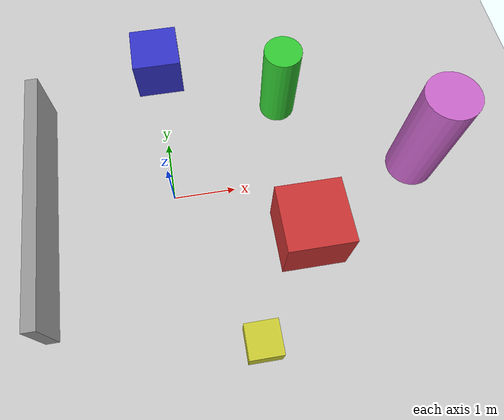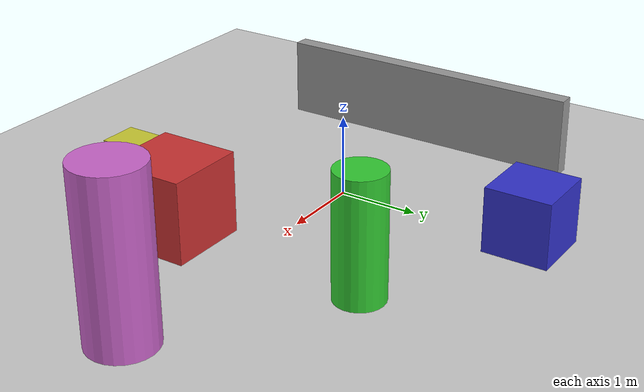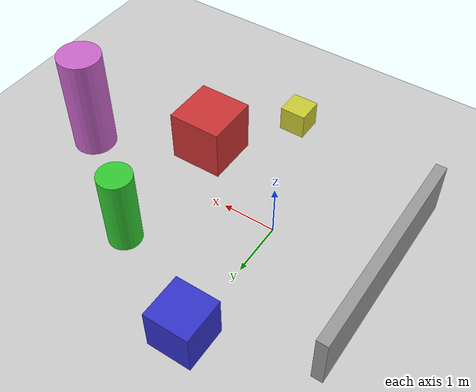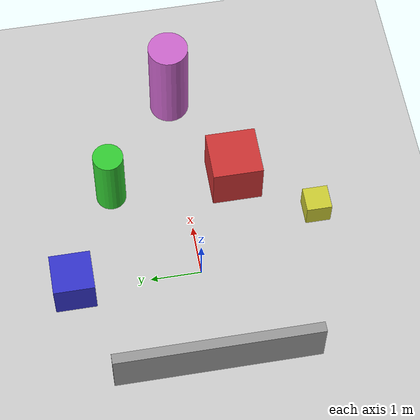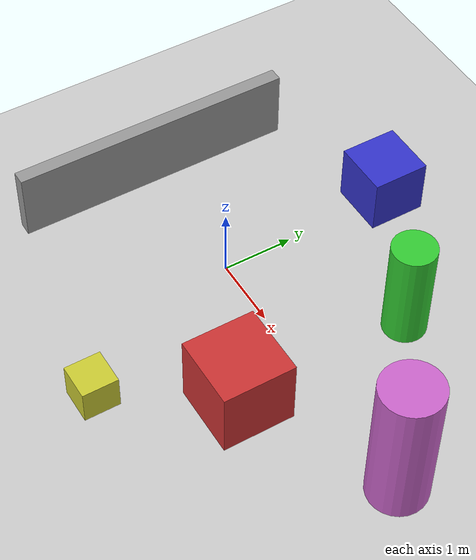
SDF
<?xml version="1.0" ?>
<sdf version="1.6">
  <world name="default">
    <physics name="1ms" type="ignored">
      <max_step_size>0.001</max_step_size>
      <real_time_factor>1.0</real_time_factor>
    </physics>
    <plugin
      filename="libignition-gazebo-physics-system.so"
      name="ignition::gazebo::systems::Physics">
    </plugin>
    <plugin
      filename="libignition-gazebo-user-commands-system.so"
      name="ignition::gazebo::systems::UserCommands">
    </plugin>
    <plugin
      filename="libignition-gazebo-scene-broadcaster-system.so"
      name="ignition::gazebo::systems::SceneBroadcaster">
    </plugin>

    <light type="directional" name="sun">
      <cast_shadows>true</cast_shadows>
      <pose>0 0 10 0 0 0</pose>
      <diffuse>0.8 0.8 0.8 1</diffuse>
      <specular>0.2 0.2 0.2 1</specular>
      <attenuation>
        <range>1000</range>
        <constant>0.9</constant>
        <linear>0.01</linear>
        <quadratic>0.001</quadratic>
      </attenuation>
      <direction>-0.5 0.1 -0.9</direction>
    </light>

    <model name="ground_plane">
      <static>true</static>
      <link name="link">
        <collision name="collision">
          <geometry>
            <plane>
              <normal>0 0 1</normal>
              <size>100 100</size>
            </plane>
          </geometry>
        </collision>
        <visual name="visual">
          <geometry>
            <plane>
              <normal>0 0 1</normal>
              <size>100 100</size>
            </plane>
          </geometry>
          <material>
            <ambient>0.8 0.8 0.8 1</ambient>
            <diffuse>0.8 0.8 0.8 1</diffuse>
            <specular>0.8 0.8 0.8 1</specular>
          </material>
        </visual>
      </link>
    </model>

    <!-- OBSTACLE 1: Box (front-right) -->
    <model name="box_obstacle_1">
      <static>true</static>
      <pose>2 -1 0.5 0 0 0</pose>
      <link name="link">
        <collision name="collision">
          <geometry>
            <box><size>1 1 1</size></box>
          </geometry>
        </collision>
        <visual name="visual">
          <geometry>
            <box><size>1 1 1</size></box>
          </geometry>
          <material>
            <ambient>0.8 0.2 0.2 1</ambient>
            <diffuse>0.8 0.2 0.2 1</diffuse>
          </material>
        </visual>
      </link>
    </model>

    <!-- OBSTACLE 2: Cylinder (front-left) -->
    <model name="cylinder_obstacle">
      <static>true</static>
      <pose>2 1.5 0.75 0 0 0</pose>
      <link name="link">
        <collision name="collision">
          <geometry>
            <cylinder><radius>0.3</radius><length>1.5</length></cylinder>
          </geometry>
        </collision>
        <visual name="visual">
          <geometry>
            <cylinder><radius>0.3</radius><length>1.5</length></cylinder>
          </geometry>
          <material>
            <ambient>0.2 0.8 0.2 1</ambient>
            <diffuse>0.2 0.8 0.2 1</diffuse>
          </material>
        </visual>
      </link>
    </model>

    <!-- OBSTACLE 3: Box (left side) -->
    <model name="box_obstacle_2">
      <static>true</static>
      <pose>0 2.5 0.4 0 0 0</pose>
      <link name="link">
        <collision name="collision">
          <geometry>
            <box><size>0.8 0.8 0.8</size></box>
          </geometry>
        </collision>
        <visual name="visual">
          <geometry>
            <box><size>0.8 0.8 0.8</size></box>
          </geometry>
          <material>
            <ambient>0.2 0.2 0.8 1</ambient>
            <diffuse>0.2 0.2 0.8 1</diffuse>
          </material>
        </visual>
      </link>
    </model>

    <!-- OBSTACLE 4: Wall (behind) -->
    <model name="wall_obstacle">
      <static>true</static>
      <pose>-2 0 0.5 0 0 0</pose>
      <link name="link">
        <collision name="collision">
          <geometry>
            <box><size>0.2 4 1</size></box>
          </geometry>
        </collision>
        <visual name="visual">
          <geometry>
            <box><size>0.2 4 1</size></box>
          </geometry>
          <material>
            <ambient>0.6 0.6 0.6 1</ambient>
            <diffuse>0.6 0.6 0.6 1</diffuse>
          </material>
        </visual>
      </link>
    </model>

    <!-- OBSTACLE 5: Small box (right side) -->
    <model name="box_obstacle_3">
      <static>true</static>
      <pose>1 -2.5 0.25 0 0 0</pose>
      <link name="link">
        <collision name="collision">
          <geometry>
            <box><size>0.5 0.5 0.5</size></box>
          </geometry>
        </collision>
        <visual name="visual">
          <geometry>
            <box><size>0.5 0.5 0.5</size></box>
          </geometry>
          <material>
            <ambient>0.8 0.8 0.2 1</ambient>
            <diffuse>0.8 0.8 0.2 1</diffuse>
          </material>
        </visual>
      </link>
    </model>

    <!-- OBSTACLE 6: Tall cylinder (far front) -->
    <model name="cylinder_obstacle_2">
      <static>true</static>
      <pose>4 0 1 0 0 0</pose>
      <link name="link">
        <collision name="collision">
          <geometry>
            <cylinder><radius>0.4</radius><length>2</length></cylinder>
          </geometry>
        </collision>
        <visual name="visual">
          <geometry>
            <cylinder><radius>0.4</radius><length>2</length></cylinder>
          </geometry>
          <material>
            <ambient>0.8 0.4 0.8 1</ambient>
            <diffuse>0.8 0.4 0.8 1</diffuse>
          </material>
        </visual>
      </link>
    </model>

  </world>
</sdf>
